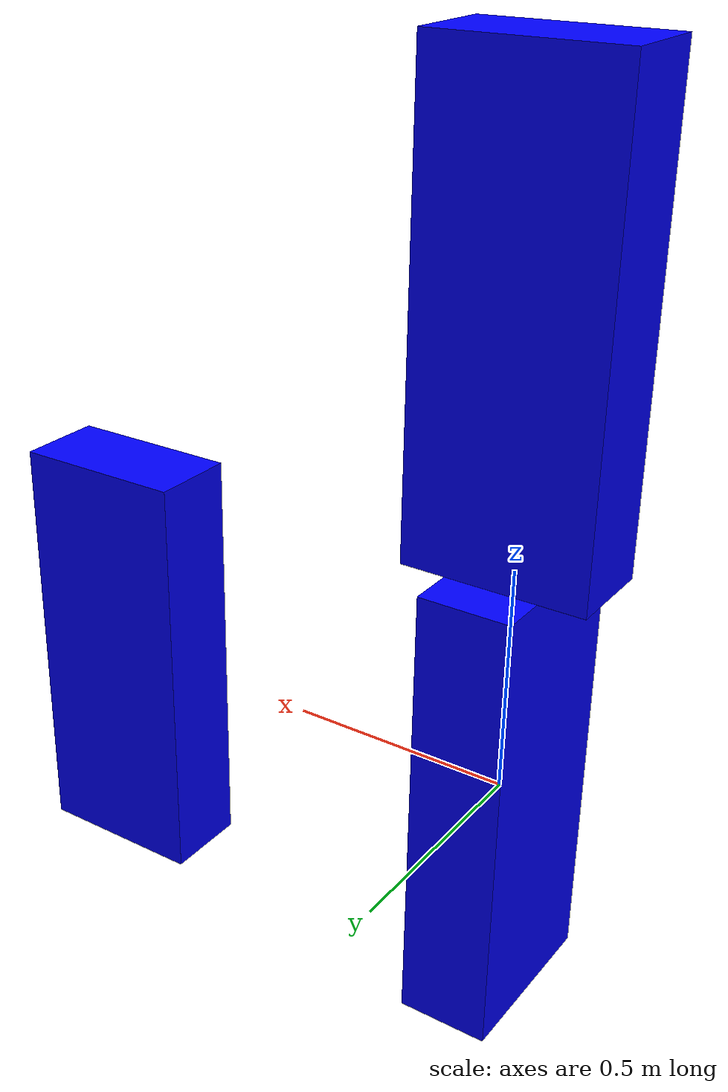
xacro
<?xml version="1.0"?>
<robot name="box_bot" xmlns:xacro="http://www.ros.org/wiki/xacro">

<link name="base_link">
  <visual>
    <origin xyz="1 0 0" rpy="0 0 0"/>
    <geometry>
      <box size="0.4 0.2 1"/>
    </geometry>
    <material name="blue">
      <color rgba="0 0 1 1"/>
    </material>
  </visual>
  <collision>
    <origin xyz="1 0 0" rpy="0 0 0"/>
    <geometry>
      <box size="0.4 0.2 1"/>
    </geometry>
  </collision>
  <inertial>
    <origin xyz="1 0 0" rpy="0 0 0"/>
    <mass value="2.0"/>
    <inertia ixx="0.1" iyy="0.1" izz="0.1" ixy="0.0" ixz="0.0" iyz="0.0"/>
  </inertial>
</link>

<joint name="joint1" type="fixed">
  <parent link="base_link"/>
  <child link="link1"/>
  <origin xyz="0 0 0" rpy="0 0 0"/>
</joint>

<link name="link1">
  <visual>
    <origin xyz="0 0 0" rpy="0 0 1.57"/>
    <geometry>
      <box size="0.4 0.2 1"/>
    </geometry>
    <material name="blue">
      <color rgba="0 0 1 1"/>
    </material>
  </visual>
  <collision>
    <origin xyz="0 0 0" rpy="0 0 1.57"/>
    <geometry>
      <box size="0.4 0.2 1"/>
    </geometry>
  </collision>
  <inertial>
    <origin xyz="0 0 0" rpy="0 0 1.57"/>
    <mass value="2.0"/>
    <inertia ixx="0.1" iyy="0.1" izz="0.1" ixy="0.0" ixz="0.0" iyz="0.0"/>
  </inertial>
</link>

<joint name="joint2" type="fixed">
  <parent link="link1"/>
  <child link="link2"/>
  <origin xyz="0 0 0" rpy="0 0 0"/>
</joint>

<link name="link2">
  <visual>
    <origin xyz="0 0 1" rpy="0 0 0"/>
    <geometry>
      <box size="0.4 0.2 1"/>
    </geometry>
    <material name="blue">
      <color rgba="0 0 1 1"/>
    </material>
  </visual>
  <collision>
    <origin xyz="0 0 1" rpy="0 0 0"/>
    <geometry>
      <box size="0.4 0.2 1"/>
    </geometry>
  </collision>
  <inertial>
    <origin xyz="0 0 1" rpy="0 0 0"/>
    <mass value="2.0"/>
    <inertia ixx="0.1" iyy="0.1" izz="0.1" ixy="0.0" ixz="0.0" iyz="0.0"/>
  </inertial>
</link>

</robot>
